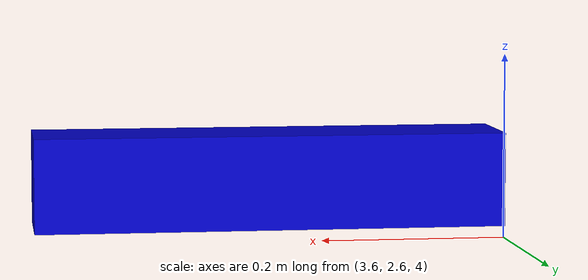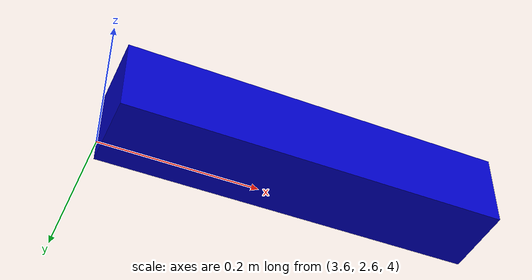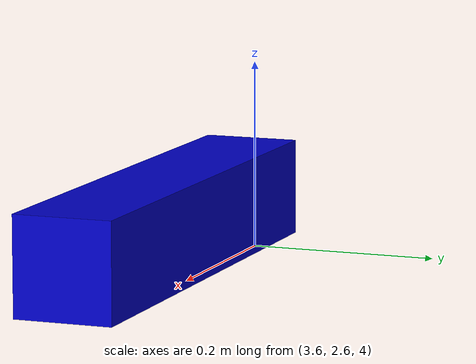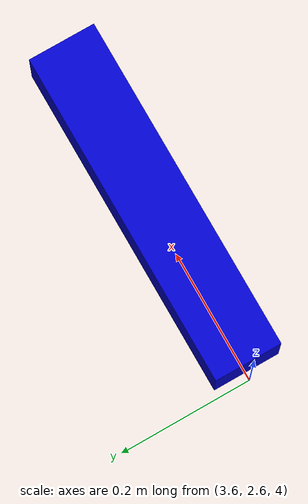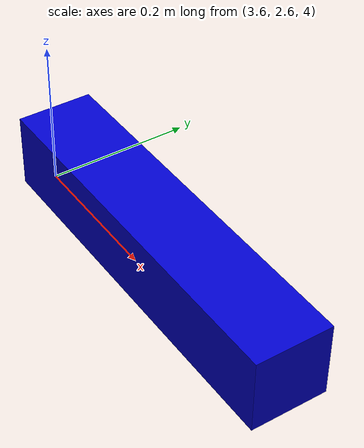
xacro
<?xml version="1.0"?>
<robot name="static_camera" xmlns:xacro="http://www.ros.org/wiki/xacro">

  <xacro:include filename="$(find deepracer_simulation)/camera_urdf/macros.xacro" />

  <!-- Add static camera for safety driver -->

  <link name="world"/>

  <joint name="fixed" type="fixed">
    <parent link="world"/>
    <child link="static_camera_link"/>
    <origin xyz="3.86 2.6 4.07" rpy="0 1.570796327 0"/>
  </joint>

  <link name="static_camera_link">
    <visual>
      <origin xyz="0 0 0" rpy="0 0 0"/>
      <geometry>
        <box size="0.1 0.1 0.5"/>
      </geometry>
      <material name="blue"/>
    </visual>
    <inertial>
      <origin xyz="0 0 1" rpy="0 0 0"/>
      <mass value="1"/>
      <inertia
        ixx="1.0" ixy="0.0" ixz="0.0"
        iyy="1.0" iyz="0.0"
        izz="1.0"/>
    </inertial>
  </link>

  <!-- Add the remaining xacros -->
  <xacro:include filename="$(find deepracer_simulation)/camera_urdf/camera.gazebo" />
  <xacro:include filename="$(find deepracer_simulation)/camera_urdf/materials.xacro" />

</robot>

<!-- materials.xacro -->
<robot name="static_camera" xmlns:xacro="http://www.ros.org/wiki/xacro">

<material name="black">
  <color rgba="0.0 0.0 0.0 1.0"/>
</material>

<material name="blue">
  <color rgba="0.0 0.0 0.8 1.0"/>
</material>

<material name="green">
  <color rgba="0.0 0.8 0.0 1.0"/>
</material>

<material name="grey">
  <color rgba="0.2 0.2 0.2 1.0"/>
</material>

<material name="orange">
  <color rgba="${255/255} ${108/255} ${10/255} 1.0"/>
</material>

<material name="brown">
  <color rgba="${222/255} ${207/255} ${195/255} 1.0"/>
</material>

<material name="red">
  <color rgba="0.8 0.0 0.0 1.0"/>
</material>

<material name="white">
  <color rgba="1.0 1.0 1.0 1.0"/>
</material>

</robot>
